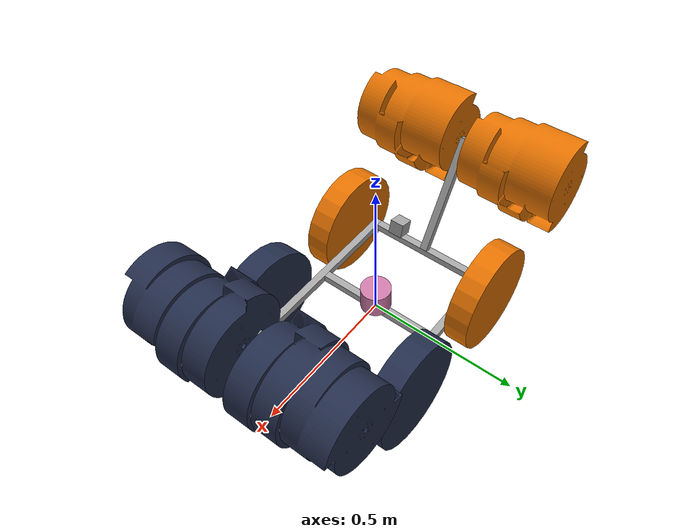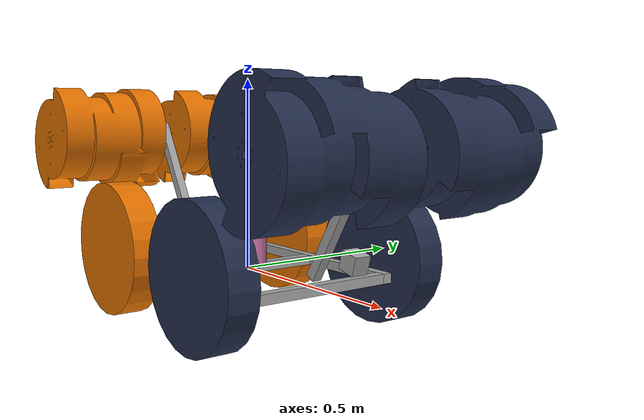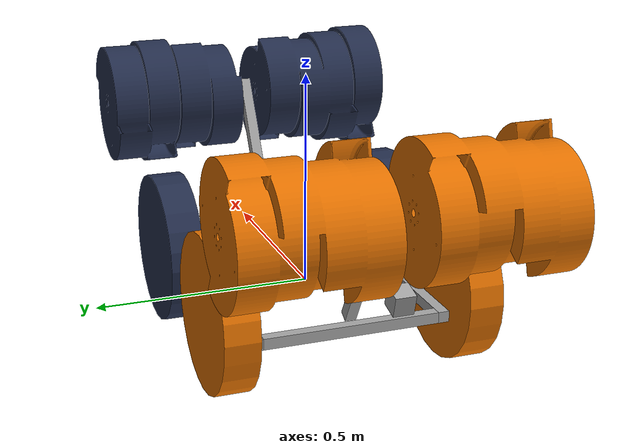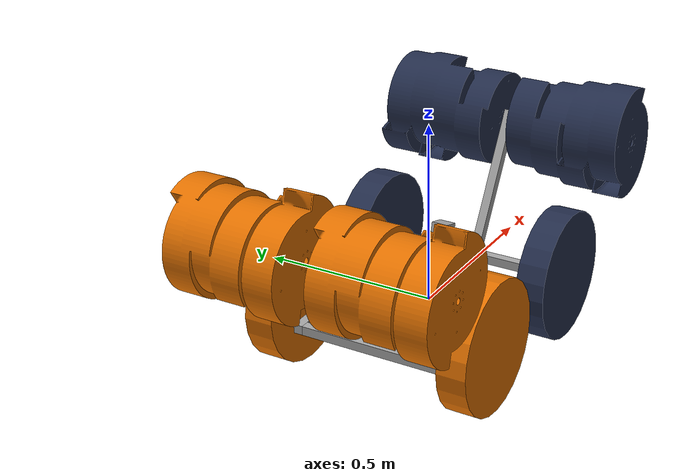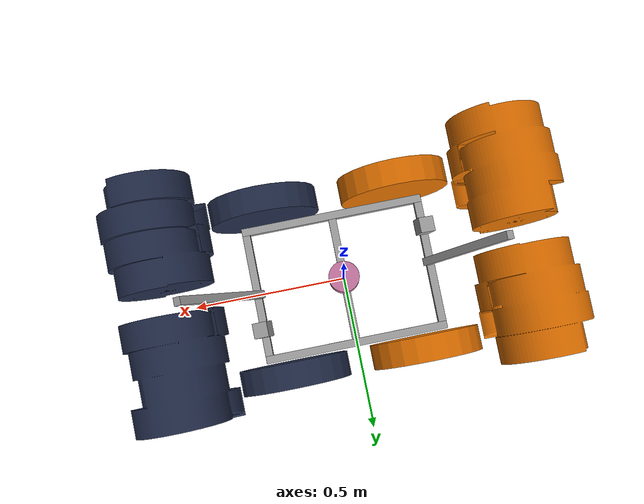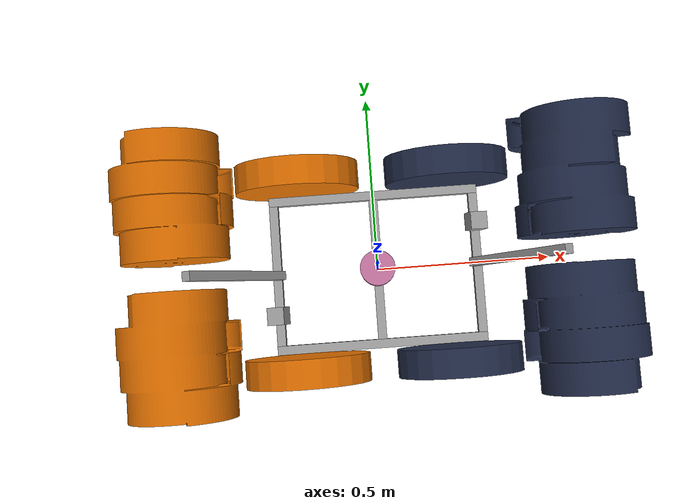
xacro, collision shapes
<?xml version="1.0" ?>
<robot xmlns:xacro="http://wiki.ros.org/xacro" name="robot">
  <xacro:arg name="enable_rgbd" default="false"/>
  <xacro:arg name="enable_lidar" default="false"/>
  <!-- Front/rear Gazebo cameras render grayscale by default to match the
       monochrome OV9281 cameras on the robot; set true for color. -->
  <xacro:arg name="color_cameras" default="false"/>
  <xacro:include filename="$(find startup)/urdf/robot/urdf/rgbd.gazebo.xacro" />

  <xacro:include filename="$(find startup)/urdf/robot/urdf/robot.urdf" />

  <link name="base_link" />
  <joint name="blue_forward_base_joint" type="fixed">
    <parent link="base_link" />
    <child link="frame_assembly" />
    <origin xyz="0 0 0" rpy="0 0 ${pi / 2}" />
  </joint>

  <xacro:include filename="$(find startup)/urdf/robot/urdf/ros2_control.urdf.xacro" />

  <xacro:robot_ros2_control robot_backend="$(arg robot_backend)" serial_port="$(arg serial_port)" />

  <xacro:macro name="gazebo_camera" params="name">
    <gazebo reference="${name}_camera_link">
      <sensor name="${name}_camera" type="camera">
        <pose>0 0 0 ${-pi / 2} 0 ${pi / 2}</pose>
        <always_on>true</always_on>
        <update_rate>$(arg camera_update_rate)</update_rate>
        <topic>/${name}_camera/image_raw</topic>
        <gz_frame_id>${name}_camera_color_optical_frame</gz_frame_id>
        <camera>
          <!-- MuJoCo uses a 58 degree vertical FOV at a 4:3 aspect ratio. -->
          <horizontal_fov>${2 * atan(tan(58 * pi / 360) * 4 / 3)}</horizontal_fov>
          <image>
            <width>640</width>
            <height>480</height>
            <!-- L8 (grayscale) is published by ros_gz_bridge as mono8 and
                 R8G8B8 as rgb8; the H.264 encoder and the WebRTC streamer
                 accept either. -->
            <xacro:if value="$(arg color_cameras)"><format>R8G8B8</format></xacro:if>
            <xacro:unless value="$(arg color_cameras)"><format>L8</format></xacro:unless>
          </image>
          <clip>
            <near>0.05</near>
            <far>100</far>
          </clip>
        </camera>
      </sensor>
    </gazebo>
  </xacro:macro>

  <xacro:gazebo_camera name="front"/>
  <xacro:gazebo_camera name="rear"/>

  <xacro:if value="$(arg enable_rgbd)">
    <xacro:if value="${'$(arg robot_backend)' == 'gazebo'}">
      <xacro:rgbd_camera parent="frame_assembly" name="rgbd_blue"
                        xyz="0.1159 -0.2921 0.1308" yaw="${-pi / 2}"/>
      <xacro:rgbd_camera parent="frame_assembly" name="rgbd_orange"
                        xyz="0.1159 0.2921 0.1308" yaw="${pi / 2}"/>
    </xacro:if>
  </xacro:if>

  <xacro:if value="$(arg enable_lidar)">
    <gazebo reference="unilidar_link">

      <!-- 1. 3D LiDAR Sensor Profile (Unitree L2 Specifications) -->
      <sensor name="unilidar_cloud" type="gpu_lidar">
        <pose>0 0 0 0 0 0</pose>
        <update_rate>10</update_rate>
        <ray>
          <scan>
            <horizontal>
              <samples>360</samples>
              <resolution>1</resolution>
              <min_angle>-3.14159</min_angle>
              <max_angle>3.14159</max_angle>
            </horizontal>
            <vertical>
              <samples>32</samples> <!-- Unitree L2 features a dense vertical profile -->
              <resolution>1</resolution>
              <min_angle>-0.261799</min_angle> <!-- -15 deg -->
              <max_angle>0.261799</max_angle>  <!-- +15 deg -->
            </vertical>
          </scan>
          <range>
            <!-- Ignore close chassis returns; RGB-D covers nearby obstacles. -->
            <min>0.05</min>
            <max>30.0</max>
            <resolution>0.01</resolution>
          </range>
        </ray>
        <always_on>true</always_on>
        <visualize>false</visualize>
        <topic>unilidar/cloud</topic>
        <gz_frame_id>unilidar_link</gz_frame_id>
      </sensor>

      <!-- 2. Integrated IMU Sensor Profile (with exact internal offset) -->
      <sensor name="unilidar_imu" type="imu">
        <always_on>true</always_on>
        <update_rate>200</update_rate> <!-- Fast update rate for LIO pipelines -->
        <visualize>false</visualize>
        <topic>unilidar/imu</topic>
        <!-- Accurate physical hardware offset inside Unitree L2 housing -->
        <pose>-0.007698 -0.014655 0.00667 0 0 0</pose>
        <gz_frame_id>unilidar_link</gz_frame_id>
        <imu>
          <angular_velocity>
            <x><noise type="gaussian"><mean>0.0</mean><stddev>2e-4</stddev></noise></x>
            <y><noise type="gaussian"><mean>0.0</mean><stddev>2e-4</stddev></noise></y>
            <z><noise type="gaussian"><mean>0.0</mean><stddev>2e-4</stddev></noise></z>
          </angular_velocity>
          <linear_acceleration>
            <x><noise type="gaussian"><mean>0.0</mean><stddev>1.7e-2</stddev></noise></x>
            <y><noise type="gaussian"><mean>0.0</mean><stddev>1.7e-2</stddev></noise></y>
            <z><noise type="gaussian"><mean>0.0</mean><stddev>1.7e-2</stddev></noise></z>
          </linear_acceleration>
        </imu>
      </sensor>
    </gazebo>

    <gazebo reference="unilidar_joint">
      <disableFixedJointLumping>true</disableFixedJointLumping>
    </gazebo>

  </xacro:if>

  <!-- Gazebo ros2_control plugin    -->

  <gazebo>
    <plugin
        filename="libgz_ros2_control-system.so"
        name="gz_ros2_control::GazeboSimROS2ControlPlugin">

      <parameters>
        $(find startup)/config/controllers.yaml
      </parameters>

    </plugin>
    <plugin
      filename="gz-sim-imu-system"
      name="gz::sim::systems::Imu">
    </plugin>
  </gazebo>
</robot>

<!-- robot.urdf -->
<robot name="robot">
  <link name="frame_assembly">
    <inertial>
      <origin xyz="0 0 0" rpy="0 0 0"/>
      <mass value="30"/>
      <inertia ixx="1" ixy="0" ixz="0" iyy="1" iyz="0" izz="1"/>
    </inertial>
    <visual>
      <origin xyz="2.77556e-17 -0.2921 -1.38778e-17" rpy="6.82962e-17 6.82962e-17 0"/>
      <geometry>
        <mesh filename="file://$(find startup)/urdf/robot/assets/frame__length_0_40640000000000004_meter.stl"/>
      </geometry>
      <material name="frame__length_0_40640000000000004_meter_material">
        <color rgba="0.647059 0.647059 0.647059 1"/>
      </material>
    </visual>
    <collision>
      <origin xyz="2.77556e-17 -0.2921 -1.38778e-17" rpy="6.82962e-17 6.82962e-17 0"/>
      <geometry>
        <mesh filename="file://$(find startup)/urdf/robot/assets/frame__length_0_40640000000000004_meter.stl"/>
      </geometry>
    </collision>
    <visual>
      <origin xyz="2.77556e-17 0.2921 -1.38778e-17" rpy="6.82962e-17 6.82962e-17 0"/>
      <geometry>
        <mesh filename="file://$(find startup)/urdf/robot/assets/frame__length_0_40640000000000004_meter.stl"/>
      </geometry>
      <material name="frame_2m_material">
        <color rgba="0.647059 0.647059 0.647059 1"/>
      </material>
    </visual>
    <collision>
      <origin xyz="2.77556e-17 0.2921 -1.38778e-17" rpy="6.82962e-17 6.82962e-17 0"/>
      <geometry>
        <mesh filename="file://$(find startup)/urdf/robot/assets/frame__length_0_40640000000000004_meter.stl"/>
      </geometry>
    </collision>
    <visual>
      <origin xyz="0 0 0" rpy="0 -0 0"/>
      <geometry>
        <mesh filename="file://$(find startup)/urdf/robot/assets/frame__length_0_40640000000000004_meter.stl"/>
      </geometry>
      <material name="frame__length_0_40640000000000004_meter_3_material">
        <color rgba="0.647059 0.647059 0.647059 1"/>
      </material>
    </visual>
    <collision>
      <origin xyz="0 0 0" rpy="0 -0 0"/>
      <geometry>
        <mesh filename="file://$(find startup)/urdf/robot/assets/frame__length_0_40640000000000004_meter.stl"/>
      </geometry>
    </collision>
    <visual>
      <origin xyz="0.2159 1.1189e-16 -2.1684e-18" rpy="6.82962e-17 -0 -1.5708"/>
      <geometry>
        <mesh filename="file://$(find startup)/urdf/robot/assets/frame__length_0_6096_meter.stl"/>
      </geometry>
      <material name="frame__length_0_6096_meter_material">
        <color rgba="0.647059 0.647059 0.647059 1"/>
      </material>
    </visual>
    <collision>
      <origin xyz="0.2159 1.1189e-16 -2.1684e-18" rpy="6.82962e-17 -0 -1.5708"/>
      <geometry>
        <mesh filename="file://$(find startup)/urdf/robot/assets/frame__length_0_6096_meter.stl"/>
      </geometry>
    </collision>
    <visual>
      <origin xyz="-0.2159 -1.09987e-16 -2.18865e-18" rpy="6.82962e-17 -0 1.5708"/>
      <geometry>
        <mesh filename="file://$(find startup)/urdf/robot/assets/frame__length_0_6096_meter.stl"/>
      </geometry>
      <material name="frame__length_0_6096_meter_2_material">
        <color rgba="0.647059 0.647059 0.647059 1"/>
      </material>
    </visual>
    <collision>
      <origin xyz="-0.2159 -1.09987e-16 -2.18865e-18" rpy="6.82962e-17 -0 1.5708"/>
      <geometry>
        <mesh filename="file://$(find startup)/urdf/robot/assets/frame__length_0_6096_meter.stl"/>
      </geometry>
    </collision>
  </link>

  <link name="front_left_wheel">
    <inertial>
      <origin xyz="0 0 -0.0396875000" rpy="0 0 0"/>
      <mass value="1.1"/>
      <inertia ixx="0.0179645977" ixy="0" ixz="0.0000000617" iyy="0.0179645977" iyz="0" izz="0.0347741239"/>
    </inertial>
    <visual>
      <origin xyz="0 1.38778e-17 -0.0396875" rpy="1.5708 1.5708 0"/>
      <geometry>
        <mesh filename="file://$(find startup)/urdf/robot/assets/wheel.stl"/>
      </geometry>
      <material name="wheel_material">
        <color rgba="0.137255 0.176471 0.294118 1"/>
      </material>
    </visual>
    <collision>
      <!-- Solid tire contact; STL triangle collisions can pass through terrain meshes. -->
      <origin xyz="0 0 -0.0396875" rpy="0 0 0"/>
      <geometry>
        <cylinder radius="0.1778" length="0.079375"/>
      </geometry>
    </collision>
  </link>
  <joint name="front_left_wheel_joint" type="continuous">
    <origin xyz="0.23495 -0.2159 0.04445" rpy="-1.5708 -0 1.5708"/>
    <parent link="frame_assembly"/>
    <child link="front_left_wheel"/>
    <axis xyz="0 0 -1"/>
    <limit effort="1000" velocity="10"/>
    <dynamics damping="10.0" friction="20.0"/>
  </joint>

  <link name="rear_left_wheel">
    <inertial>
      <origin xyz="0 0 -0.0396875000" rpy="0 0 0"/>
      <mass value="1.1"/>
      <inertia ixx="0.0179645977" ixy="0" ixz="0.0000000617" iyy="0.0179645977" iyz="0" izz="0.0347741239"/>
    </inertial>
    <visual>
      <origin xyz="0 1.38778e-17 -0.0396875" rpy="1.5708 1.5708 0"/>
      <geometry>
        <mesh filename="file://$(find startup)/urdf/robot/assets/wheel.stl"/>
      </geometry>
      <material name="rear_left_wheel_material">
        <color rgba="0.898039 0.447059 0 1"/>
      </material>
    </visual>
    <collision>
      <origin xyz="0 0 -0.0396875" rpy="0 0 0"/>
      <geometry>
        <cylinder radius="0.1778" length="0.079375"/>
      </geometry>
    </collision>
  </link>
  <joint name="rear_left_wheel_joint" type="continuous">
    <origin xyz="0.23495 0.2159 0.0508" rpy="-1.5708 -0 1.5708"/>
    <parent link="frame_assembly"/>
    <child link="rear_left_wheel"/>
    <axis xyz="0 0 -1"/>
    <limit effort="1000" velocity="10"/>
    <dynamics damping="10.0" friction="20.0"/>
  </joint>

  <link name="rear_right_wheel">
    <inertial>
      <origin xyz="0 0 -0.0396875000" rpy="0 0 0"/>
      <mass value="1.1"/>
      <inertia ixx="0.0179645977" ixy="0" ixz="-0.0000000617" iyy="0.0179645977" iyz="0" izz="0.0347741239"/>
    </inertial>
    <visual>
      <origin xyz="0 -1.38778e-17 -0.0396875" rpy="-1.5708 -1.5708 0"/>
      <geometry>
        <mesh filename="file://$(find startup)/urdf/robot/assets/wheel.stl"/>
      </geometry>
      <material name="rear_right_wheel_material">
        <color rgba="0.898039 0.447059 0 1"/>
      </material>
    </visual>
    <collision>
      <origin xyz="0 0 -0.0396875" rpy="0 0 0"/>
      <geometry>
        <cylinder radius="0.1778" length="0.079375"/>
      </geometry>
    </collision>
  </link>
  <joint name="rear_right_wheel_joint" type="continuous">
    <origin xyz="-0.23495 0.2159 0.0508" rpy="-1.5708 -0 -1.5708"/>
    <parent link="frame_assembly"/>
    <child link="rear_right_wheel"/>
    <axis xyz="0 0 1"/>
    <limit effort="1000" velocity="10"/>
    <dynamics damping="10.0" friction="20.0"/>
  </joint>

  <link name="front_right_wheel">
    <inertial>
      <origin xyz="0 0 -0.0396875000" rpy="0 0 0"/>
      <mass value="1.1"/>
      <inertia ixx="0.0179645977" ixy="0" ixz="-0.0000000617" iyy="0.0179645977" iyz="0" izz="0.0347741239"/>
    </inertial>
    <visual>
      <origin xyz="0 -1.38778e-17 -0.0396875" rpy="-1.5708 -1.5708 0"/>
      <geometry>
        <mesh filename="file://$(find startup)/urdf/robot/assets/wheel.stl"/>
      </geometry>
      <material name="front_right_wheel_material">
        <color rgba="0.137255 0.176471 0.294118 1"/>
      </material>
    </visual>
    <collision>
      <origin xyz="0 0 -0.0396875" rpy="0 0 0"/>
      <geometry>
        <cylinder radius="0.1778" length="0.079375"/>
      </geometry>
    </collision>
  </link>
  <joint name="front_right_wheel_joint" type="continuous">
    <origin xyz="-0.23495 -0.2159 0.0508" rpy="-1.5708 -0 -1.5708"/>
    <parent link="frame_assembly"/>
    <child link="front_right_wheel"/>
    <axis xyz="0 0 1"/>
    <limit effort="1000" velocity="10"/>
    <dynamics damping="10.0" friction="20.0"/>
  </joint>

  <link name="front_arm">
    <inertial>
      <origin xyz="0 0 0" rpy="0 0 0"/>
      <mass value="1"/>
      <inertia ixx="1" ixy="0" ixz="0" iyy="1" iyz="0" izz="1"/>
    </inertial>
    <visual>
      <origin xyz="0.173037 0 -1.73472e-18" rpy="-1.5708 -1.66039e-32 1.48742e-17"/>
      <geometry>
        <mesh filename="file://$(find startup)/urdf/robot/assets/frame__length_0_40640000000000004_meter.stl"/>
      </geometry>
      <material name="frame__length_0_40640000000000004_meter_4_material">
        <color rgba="0.647059 0.647059 0.647059 1"/>
      </material>
    </visual>
    <collision>
      <origin xyz="0.173037 0 -1.73472e-18" rpy="-1.5708 -1.66039e-32 1.48742e-17"/>
      <geometry>
        <mesh filename="file://$(find startup)/urdf/robot/assets/frame__length_0_40640000000000004_meter.stl"/>
      </geometry>
    </collision>
  </link>

  <joint name="front_arm_joint" type="revolute">
    <origin xyz="3.1225e-17 -0.2921 0.0508" rpy="-1.5708 -1.0472 -1.5708"/>
    <parent link="frame_assembly"/>
    <child link="front_arm"/>
    <axis xyz="0 0 -1"/>
    <limit effort="1000" velocity="2.0" lower="-1.2" upper="0.2"/>
    <dynamics damping="80.0" friction="700.0" />
  </joint>

  <link name="drum">
    <inertial>
      <origin xyz="0 -0.0001008137 0.1587500018" rpy="0 0 0"/>
      <mass value="1.5"/>
      <inertia ixx="0.0216031925" ixy="0" ixz="0" iyy="0.0216031925" iyz="-0.0000000132" izz="0.0180048221"/>
    </inertial>
    <visual>
      <origin xyz="0 0 0.00254" rpy="-1.5708 -1.57526e-32 4.0637e-17"/>
      <geometry>
        <mesh filename="file://$(find startup)/urdf/robot/assets/drum.stl"/>
      </geometry>
      <material name="drum_material">
        <color rgba="0.137255 0.176471 0.294118 1"/>
      </material>
    </visual>
    <collision>
      <origin xyz="0 0 0.00254" rpy="-1.5708 -1.57526e-32 4.0637e-17"/>
      <geometry>
        <mesh filename="file://$(find startup)/urdf/robot/assets/drum.stl"/>
      </geometry>
    </collision>
  </link>
  <joint name="front_drum_joint" type="continuous">
    <origin xyz="0.357187 0.0476885 0.0381" rpy="1.51327e-16 -1.41588e-16 -1.5708"/>
    <parent link="front_arm"/>
    <child link="drum"/>
    <axis xyz="0 0 1"/>
    <limit effort="1000" velocity="10"/>
  </joint>

  <link name="front_right_drum">
    <inertial>
      <origin xyz="-0.0002101910 -0.0000444932 -0.1587499982" rpy="0 0 0"/>
      <mass value="1.5"/>
      <inertia ixx="0.0216031925" ixy="0" ixz="0" iyy="0.0216031925" iyz="-0.0000000132" izz="0.0180048221"/>
    </inertial>
    <visual>
      <origin xyz="-0.000210191 5.63205e-05 -0.31496" rpy="-1.5708 -2.95656e-16 1.48742e-17"/>
      <geometry>
        <mesh filename="file://$(find startup)/urdf/robot/assets/drum.stl"/>
      </geometry>
      <material name="front_right_drum_material">
        <color rgba="0.137255 0.176471 0.294118 1"/>
      </material>
    </visual>
    <collision>
      <origin xyz="-0.000210191 5.63205e-05 -0.31496" rpy="-1.5708 -2.95656e-16 1.48742e-17"/>
      <geometry>
        <mesh filename="file://$(find startup)/urdf/robot/assets/drum.stl"/>
      </geometry>
    </collision>
  </link>
  <joint name="front_right_drum_joint" type="fixed">
    <origin xyz="0 0 -0.0762" rpy="0 0 -1.57079"/>
    <parent link="drum"/>
    <child link="front_right_drum"/>
  </joint>

  <link name="rear_arm">
    <inertial>
      <origin xyz="0 0 0" rpy="0 0 0"/>
      <mass value="1"/>
      <inertia ixx="1" ixy="0" ixz="0" iyy="1" iyz="0" izz="1"/>
    </inertial>
    <visual>
      <origin xyz="0.173038 0 -1.73472e-18" rpy="-1.5708 2.95247e-34 -2.62968e-17"/>
      <geometry>
        <mesh filename="file://$(find startup)/urdf/robot/assets/frame__length_0_40640000000000004_meter.stl"/>
      </geometry>
      <material name="frame__length_0_40640000000000004_meter_5_material">
        <color rgba="0.647059 0.647059 0.647059 1"/>
      </material>
    </visual>
    <collision>
      <origin xyz="0.173038 0 -1.73472e-18" rpy="-1.5708 2.95247e-34 -2.62968e-17"/>
      <geometry>
        <mesh filename="file://$(find startup)/urdf/robot/assets/frame__length_0_40640000000000004_meter.stl"/>
      </geometry>
    </collision>
  </link>

  <joint name="rear_arm_joint" type="revolute">
    <origin xyz="3.1225e-17 0.2921 0.0508" rpy="-1.5708 -1.0472 1.5708"/>
    <parent link="frame_assembly"/>
    <child link="rear_arm"/>
    <axis xyz="0 0 -1"/>
    <limit effort="1000" velocity="2.0" lower="-1.2" upper="0.2"/>
    <dynamics damping="80.0" friction="700.0" />
  </joint>

  <link name="rear_right_drum">
    <inertial>
      <origin xyz="0 -0.0001008137 0.1587500018" rpy="0 0 0"/>
      <mass value="1.5"/>
      <inertia ixx="0.0216031925" ixy="0" ixz="0" iyy="0.0216031925" iyz="-0.0000000132" izz="0.0180048221"/>
    </inertial>
    <visual>
      <origin xyz="0 0 0.00254" rpy="-1.5708 -1.08695e-32 -3.82533e-17"/>
      <geometry>
        <mesh filename="file://$(find startup)/urdf/robot/assets/drum.stl"/>
      </geometry>
      <material name="rear_right_drum_material">
        <color rgba="0.898039 0.447059 0 1"/>
      </material>
    </visual>
    <collision>
      <origin xyz="0 0 0.00254" rpy="-1.5708 -1.08695e-32 -3.82533e-17"/>
      <geometry>
        <mesh filename="file://$(find startup)/urdf/robot/assets/drum.stl"/>
      </geometry>
    </collision>
  </link>
  <joint name="rear_right_drum_joint" type="fixed">
    <origin xyz="-0.000001 0 0.0762" rpy="0 0 -3.14159"/>
    <parent link="rear_left_drum"/>
    <child link="rear_right_drum"/>
  </joint>

  <link name="rear_left_drum">
    <inertial>
      <origin xyz="-0.0002101910 -0.0000444932 -0.1587499982" rpy="0 0 0"/>
      <mass value="1.5"/>
      <inertia ixx="0.0216031925" ixy="0" ixz="0" iyy="0.0216031925" iyz="-0.0000000132" izz="0.0180048221"/>
    </inertial>
    <visual>
      <origin xyz="-0.000210191 5.63205e-05 -0.31496" rpy="-1.5708 -2.95656e-16 -1.35584e-17"/>
      <geometry>
        <mesh filename="file://$(find startup)/urdf/robot/assets/drum.stl"/>
      </geometry>
      <material name="rear_left_drum_material">
        <color rgba="0.898039 0.447059 0 1"/>
      </material>
    </visual>
    <collision>
      <origin xyz="-0.000210191 5.63205e-05 -0.31496" rpy="-1.5708 -2.95656e-16 -1.35584e-17"/>
      <geometry>
        <mesh filename="file://$(find startup)/urdf/robot/assets/drum.stl"/>
      </geometry>
    </collision>
  </link>
  <joint name="rear_drum_joint" type="continuous">
    <origin xyz="0.357188 0.0476885 -0.0381" rpy="6.51149e-31 -1.66571e-30 -8.18079e-17"/>
    <parent link="rear_arm"/>
    <child link="rear_left_drum"/>
    <axis xyz="0 0 1"/>
    <limit effort="1000" velocity="10"/>
  </joint>

  <link name="front_camera_link">
    <inertial>
      <origin xyz="0 0 0" rpy="0 0 0"/>
      <mass value="1"/>
      <inertia ixx="1" ixy="0" ixz="0" iyy="1" iyz="0" izz="1"/>
    </inertial>
    <visual>
      <origin xyz="0 0 0" rpy="0 0 0"/>
      <geometry>
        <box size="0.05 0.05 0.05"/>
      </geometry>
      <material name="camera_material">
        <color rgba="0.647059 0.647059 0.647059 1"/>
      </material>
    </visual>
    <collision>
      <origin xyz="0 0 0" rpy="0 0 0"/>
      <geometry>
        <box size="0.05 0.05 0.05"/>
      </geometry>
    </collision>
  </link>
  <joint name="front_camera_joint" type="fixed">
    <!-- Blue/front (-Y of CAD), aimed 15 degrees below horizontal. -->
    <origin xyz="0.1159 -0.2921 0.0508" rpy="-1.5708 1.308996939 1.5708"/>
    <parent link="frame_assembly"/>
    <child link="front_camera_link"/>
  </joint>

  <link name="front_camera_color_frame"/>
  <joint name="front_camera_color_frame_joint" type="fixed">
    <origin xyz="0 0 0" rpy="0 0 0"/>
    <parent link="front_camera_link"/>
    <child link="front_camera_color_frame"/>
  </joint>

  <link name="front_camera_color_optical_frame"/>
  <joint name="front_camera_color_optical_frame_joint" type="fixed">
    <origin xyz="0 0 0" rpy="-1.5708 -1.5708 0"/>
    <parent link="front_camera_color_frame"/>
    <child link="front_camera_color_optical_frame"/>
  </joint>

  <link name="unilidar_link">
    <inertial>
      <mass value="0.5"/>
      <origin xyz="0 0 0" rpy="0 0 0"/>
      <inertia ixx="0.001" ixy="0" ixz="0" iyy="0.001" iyz="0" izz="0.001"/>
    </inertial>
    <visual>
      <geometry>
        <cylinder radius="0.05" length="0.08"/>
      </geometry>
    </visual>
    <collision>
      <geometry>
        <cylinder radius="0.05" length="0.08"/>
      </geometry>
    </collision>
  </link>
  <joint name="unilidar_joint" type="fixed">
    <origin xyz="0 0 0.05" rpy="0 0 0"/>
    <parent link="frame_assembly"/>
    <child link="unilidar_link"/>
  </joint>

  <link name="rear_camera_link">
    <inertial>
      <origin xyz="0 0 0" rpy="0 0 0"/>
      <mass value="1"/>
      <inertia ixx="1" ixy="0" ixz="0" iyy="1" iyz="0" izz="1"/>
    </inertial>
    <visual>
      <origin xyz="0 0 0" rpy="0 0 0"/>
      <geometry>
        <box size="0.05 0.05 0.05"/>
      </geometry>
      <material name="camera_material">
        <color rgba="0.647059 0.647059 0.647059 1"/>
      </material>
    </visual>
    <collision>
      <origin xyz="0 0 0" rpy="0 0 0"/>
      <geometry>
        <box size="0.05 0.05 0.05"/>
      </geometry>
    </collision>
  </link>
  <joint name="rear_camera_joint" type="fixed">
    <!-- Orange/rear (+Y of CAD), aimed 15 degrees below horizontal. -->
    <origin xyz="-0.1159 0.2921 0.0508" rpy="-1.5708 1.308996939 -1.5708"/>
    <parent link="frame_assembly"/>
    <child link="rear_camera_link"/>
  </joint>

  <link name="rear_camera_color_frame"/>
  <joint name="rear_camera_color_frame_joint" type="fixed">
    <origin xyz="0 0 0" rpy="0 0 0"/>
    <parent link="rear_camera_link"/>
    <child link="rear_camera_color_frame"/>
  </joint>

  <link name="rear_camera_color_optical_frame"/>
  <joint name="rear_camera_color_optical_frame_joint" type="fixed">
    <origin xyz="0 0 0" rpy="-1.5708 -1.5708 0"/>
    <parent link="rear_camera_color_frame"/>
    <child link="rear_camera_color_optical_frame"/>
  </joint>

</robot>
